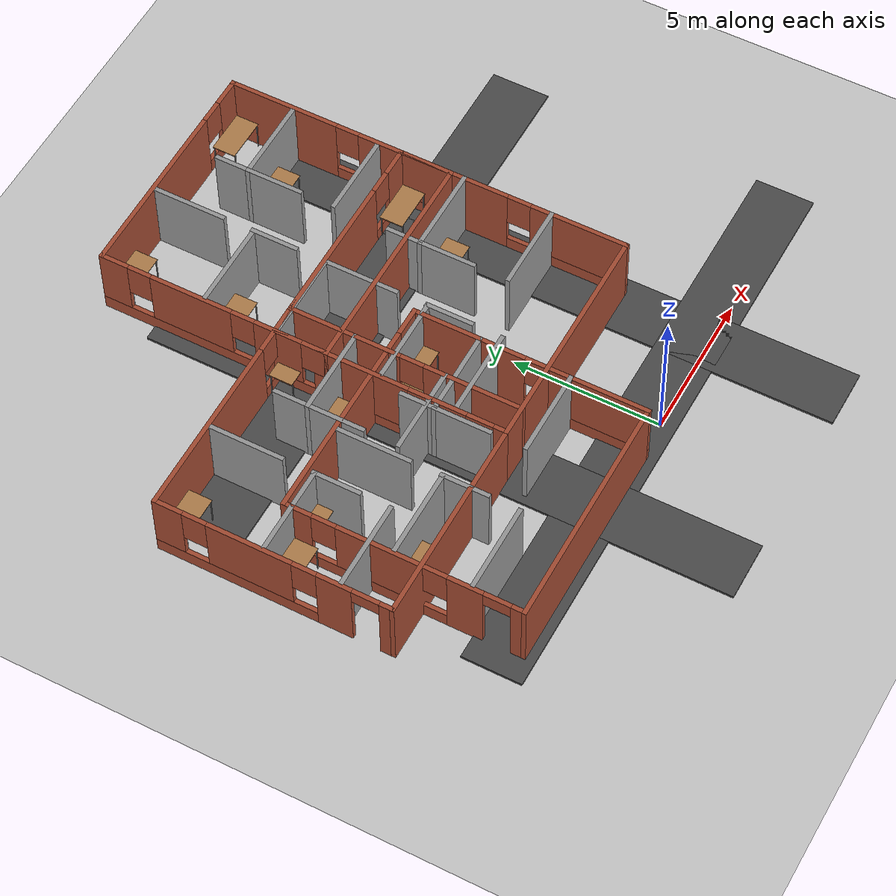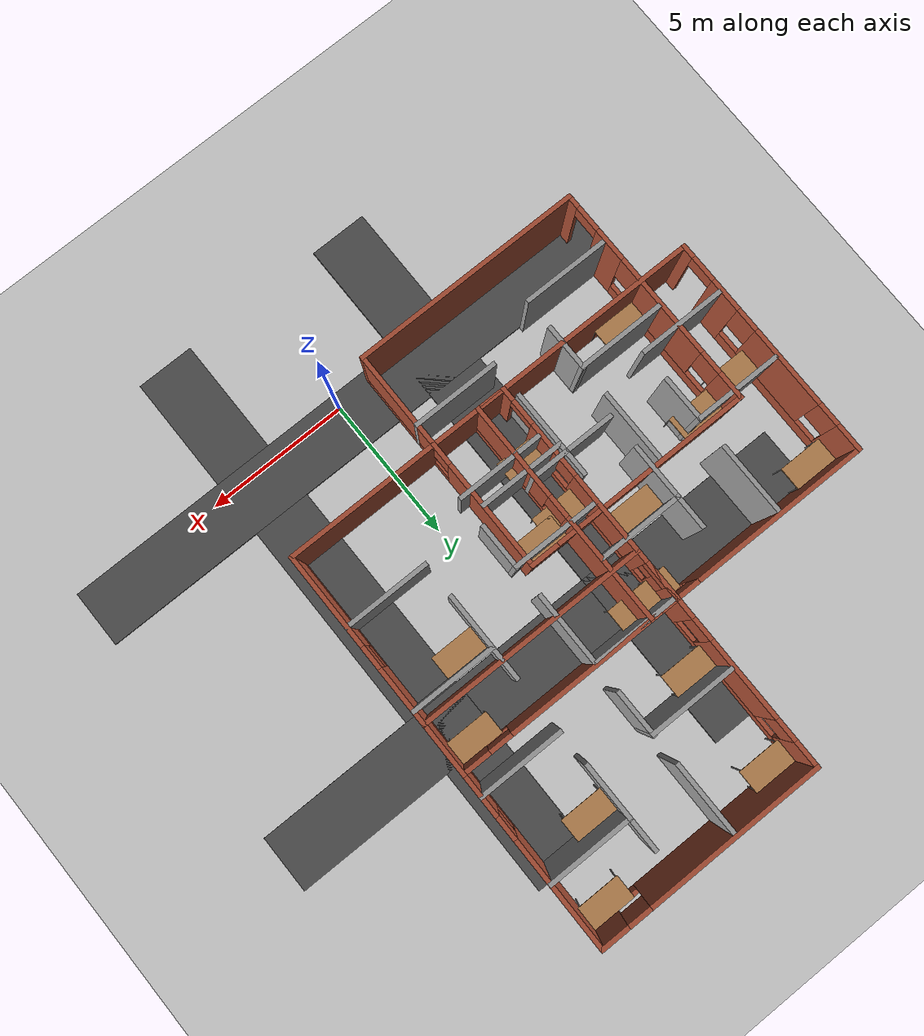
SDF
<sdf version="1.4">
 <world name="trial_1_world">
  <include><uri>model://ground_plane</uri></include>
  <plugin name="ros_interface_plugin" filename="librotors_gazebo_ros_interface_plugin.so"/>
  <include><uri>model://sun</uri></include>
  <include><uri>model://asphalt_road</uri><name>road1</name><pose>0 0.5 0 0 -0 1.57</pose></include>
  <include><uri>model://asphalt_road</uri><name>road2</name><pose>3.5 5.43 0 0 -0 0</pose></include>
  <include><uri>model://asphalt_road</uri><name>road3</name><pose>0 10 0 0 -0 1.57</pose></include>
  <include><uri>model://asphalt_road</uri><name>road4</name><pose>-3.5 5.43 0 0 -0 0</pose></include>
  <include><uri>model://office_2</uri><name>building4</name><pose>0 7.14 0.0 0 0 0</pose></include>
  <include><uri>model://office_2</uri><name>building23</name><pose>-6.90 7.14 0.0 0 0 0</pose></include>
  <include><uri>model://office_2</uri><name>building25</name><pose>-5.23 3.808 0.0 0 0 0</pose></include>
  <include><uri>model://office_2</uri><name>building32</name><pose>0 13.22 0.0 0 0 0</pose></include>
 </world>
</sdf>

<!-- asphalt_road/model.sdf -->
<sdf version='1.6'>
  <model name='asphalt_road'>
    <link name='link'>
      <self_collide>0</self_collide>
      <enable_wind>0</enable_wind>
      <kinematic>0</kinematic>
      <pose frame=''>0 0 0 0 0 0</pose>
      <gravity>1</gravity>
      <inertial>
        <mass>1</mass>
        <pose frame=''>0 0 0 0 -0 0</pose>
        <inertia>
          <ixx>1</ixx>
          <ixy>0</ixy>
          <ixz>0</ixz>
          <iyy>1</iyy>
          <iyz>0</iyz>
          <izz>1</izz>
        </inertia>
      </inertial>
      <visual name='visual'>
        <cast_shadows>0</cast_shadows>
        <geometry>
          <box>
            <size>2 20 0.1</size>
          </box>
        </geometry>
        <material>
          <script>
            <uri>model://asphalt_road/materials/scripts</uri>
            <uri>model://asphalt_road/materials/textures</uri>
            <name>vrc/asphalt_road</name>
          </script>
          <shader type='vertex'>
            <normal_map>__default__</normal_map>
          </shader>
          <ambient>0.5 0.5 0.5 1</ambient>
          <diffuse>0.5 0.5 0.5 1</diffuse>
          <specular>0.2 0.2 0.2 1</specular>
          <emissive>0 0 0 1</emissive>
        </material>
        <pose frame=''>0 0 0 0 -0 0</pose>
        <transparency>0</transparency>
      </visual>
      <collision name='collision'>
        <laser_retro>0</laser_retro>
        <max_contacts>10</max_contacts>
        <pose frame=''>0 0 0 0 -0 0</pose>
        <geometry>
          <box>
            <size>2 20 0.1</size>
          </box>
        </geometry>
        <surface>
          <friction>
            <ode>
              <mu>1</mu>
              <mu2>1</mu2>
              <fdir1>0 0 0</fdir1>
              <slip1>0</slip1>
              <slip2>0</slip2>
            </ode>
            <torsional>
              <coefficient>1</coefficient>
              <patch_radius>0</patch_radius>
              <surface_radius>0</surface_radius>
              <use_patch_radius>1</use_patch_radius>
              <ode>
                <slip>0</slip>
              </ode>
            </torsional>
          </friction>
          <bounce>
            <restitution_coefficient>0</restitution_coefficient>
            <threshold>1e+06</threshold>
          </bounce>
          <contact>
            <collide_without_contact>0</collide_without_contact>
            <collide_without_contact_bitmask>1</collide_without_contact_bitmask>
            <collide_bitmask>1</collide_bitmask>
            <ode>
              <soft_cfm>0</soft_cfm>
              <soft_erp>0.2</soft_erp>
              <kp>1e+13</kp>
              <kd>1</kd>
              <max_vel>0.01</max_vel>
              <min_depth>0</min_depth>
            </ode>
            <bullet>
              <split_impulse>1</split_impulse>
              <split_impulse_penetration_threshold>-0.01</split_impulse_penetration_threshold>
              <soft_cfm>0</soft_cfm>
              <soft_erp>0.2</soft_erp>
              <kp>1e+13</kp>
              <kd>1</kd>
            </bullet>
          </contact>
        </surface>
      </collision>
    </link>
    <static>1</static>
    <allow_auto_disable>1</allow_auto_disable>
  </model>
</sdf>
